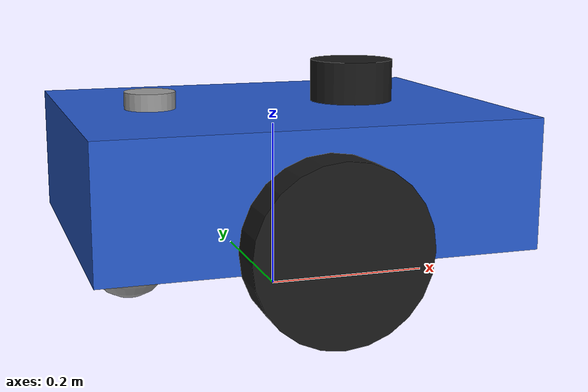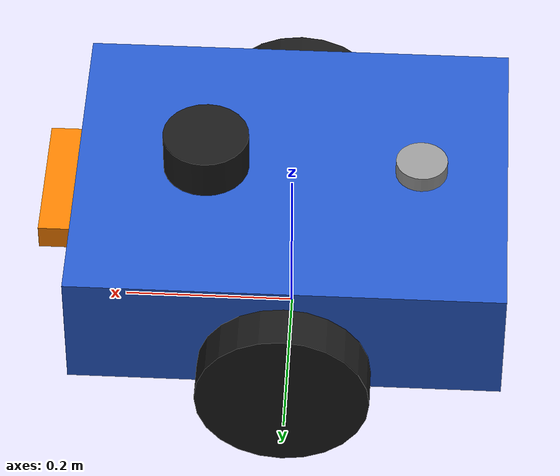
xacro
<?xml version="1.0"?>
<robot name="gps_bot" xmlns:xacro="http://www.ros.org/wiki/xacro">

  <xacro:include filename="inertial_macros.xacro"/>

  <!-- ================= Dimensions ================= -->
  <xacro:property name="PI"        value="3.14159265359"/>
  <xacro:property name="chassis_l" value="0.50"/>
  <xacro:property name="chassis_w" value="0.40"/>
  <xacro:property name="chassis_h" value="0.15"/>
  <xacro:property name="chassis_z" value="0.05"/>  <!-- chassis centre above wheel axle -->
  <xacro:property name="wheel_r"   value="0.10"/>
  <xacro:property name="wheel_w"   value="0.05"/>
  <xacro:property name="wheel_sep" value="0.45"/>
  <xacro:property name="caster_r"  value="0.05"/>
  <xacro:property name="caster_x"  value="0.18"/>

  <material name="blue">  <color rgba="0.15 0.35 0.80 1.0"/></material>
  <material name="black"> <color rgba="0.10 0.10 0.10 1.0"/></material>
  <material name="grey">  <color rgba="0.60 0.60 0.60 1.0"/></material>
  <material name="orange"><color rgba="1.00 0.50 0.00 1.0"/></material>

  <!-- ================= Base ================= -->
  <link name="base_footprint"/>

  <joint name="base_joint" type="fixed">
    <parent link="base_footprint"/>
    <child link="base_link"/>
    <origin xyz="0 0 ${wheel_r}" rpy="0 0 0"/>
  </joint>

  <link name="base_link">
    <visual>
      <origin xyz="0 0 ${chassis_z}" rpy="0 0 0"/>
      <geometry><box size="${chassis_l} ${chassis_w} ${chassis_h}"/></geometry>
      <material name="blue"/>
    </visual>
    <collision>
      <origin xyz="0 0 ${chassis_z}" rpy="0 0 0"/>
      <geometry><box size="${chassis_l} ${chassis_w} ${chassis_h}"/></geometry>
    </collision>
    <xacro:box_inertia m="8.0" x="${chassis_l}" y="${chassis_w}" z="${chassis_h}" xyz="0 0 ${chassis_z}"/>
  </link>
  <gazebo reference="base_link"><material>Gazebo/Blue</material></gazebo>

  <!-- ================= Wheels ================= -->
  <xacro:macro name="wheel" params="side y">
    <link name="${side}_wheel_link">
      <visual>
        <geometry><cylinder radius="${wheel_r}" length="${wheel_w}"/></geometry>
        <material name="black"/>
      </visual>
      <collision>
        <geometry><cylinder radius="${wheel_r}" length="${wheel_w}"/></geometry>
      </collision>
      <xacro:cylinder_inertia m="0.5" r="${wheel_r}" h="${wheel_w}"/>
    </link>
    <!-- rpy -pi/2 about X puts the wheel axis (link Z) along +Y of base_link for both wheels -->
    <joint name="${side}_wheel_joint" type="continuous">
      <parent link="base_link"/>
      <child link="${side}_wheel_link"/>
      <origin xyz="0 ${y} 0" rpy="${-PI/2} 0 0"/>
      <axis xyz="0 0 1"/>
    </joint>
    <gazebo reference="${side}_wheel_link">
      <mu1>1.0</mu1>
      <mu2>1.0</mu2>
      <material>Gazebo/Black</material>
    </gazebo>
  </xacro:macro>

  <xacro:wheel side="left"  y="${wheel_sep/2}"/>
  <xacro:wheel side="right" y="${-wheel_sep/2}"/>

  <!-- ================= Casters (frictionless) ================= -->
  <xacro:macro name="caster" params="name x">
    <link name="${name}_caster_link">
      <visual>
        <geometry><sphere radius="${caster_r}"/></geometry>
        <material name="grey"/>
      </visual>
      <collision>
        <geometry><sphere radius="${caster_r}"/></geometry>
      </collision>
      <xacro:sphere_inertia m="0.2" r="${caster_r}"/>
    </link>
    <joint name="${name}_caster_joint" type="fixed">
      <parent link="base_link"/>
      <child link="${name}_caster_link"/>
      <origin xyz="${x} 0 ${caster_r - wheel_r}" rpy="0 0 0"/>
    </joint>
    <gazebo reference="${name}_caster_link">
      <mu1>0.0</mu1>
      <mu2>0.0</mu2>
      <material>Gazebo/Grey</material>
    </gazebo>
  </xacro:macro>

  <xacro:caster name="front" x="${caster_x}"/>
  <xacro:caster name="rear"  x="${-caster_x}"/>

  <!-- ================= Gazebo control plugins ================= -->
  <gazebo>
    <plugin name="diff_drive" filename="libgazebo_ros_diff_drive.so">
      <ros>
        <remapping>odom:=wheel/odom</remapping>
      </ros>
      <update_rate>50</update_rate>
      <left_joint>left_wheel_joint</left_joint>
      <right_joint>right_wheel_joint</right_joint>
      <wheel_separation>${wheel_sep}</wheel_separation>
      <wheel_diameter>${2*wheel_r}</wheel_diameter>
      <max_wheel_torque>20</max_wheel_torque>
      <max_wheel_acceleration>10.0</max_wheel_acceleration>
      <odometry_source>0</odometry_source>   <!-- 0 = encoder, realistic drift -->
      <publish_odom>true</publish_odom>
      <publish_odom_tf>false</publish_odom_tf> <!-- odom->base_footprint comes from EKF -->
      <publish_wheel_tf>false</publish_wheel_tf>
      <odometry_frame>odom</odometry_frame>
      <robot_base_frame>base_footprint</robot_base_frame>
    </plugin>

    <plugin name="joint_states" filename="libgazebo_ros_joint_state_publisher.so">
      <update_rate>30</update_rate>
      <joint_name>left_wheel_joint</joint_name>
      <joint_name>right_wheel_joint</joint_name>
    </plugin>
  </gazebo>

  <xacro:include filename="sensors.xacro"/>
</robot>

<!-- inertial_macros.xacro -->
<robot xmlns:xacro="http://www.ros.org/wiki/xacro">
  <xacro:macro name="box_inertia" params="m x y z xyz:='0 0 0'">
    <inertial>
      <origin xyz="${xyz}" rpy="0 0 0"/>
      <mass value="${m}"/>
      <inertia ixx="${m*(y*y+z*z)/12}" ixy="0" ixz="0"
               iyy="${m*(x*x+z*z)/12}" iyz="0" izz="${m*(x*x+y*y)/12}"/>
    </inertial>
  </xacro:macro>

  <xacro:macro name="cylinder_inertia" params="m r h">
    <inertial>
      <mass value="${m}"/>
      <inertia ixx="${m*(3*r*r+h*h)/12}" ixy="0" ixz="0"
               iyy="${m*(3*r*r+h*h)/12}" iyz="0" izz="${m*r*r/2}"/>
    </inertial>
  </xacro:macro>

  <xacro:macro name="sphere_inertia" params="m r">
    <inertial>
      <mass value="${m}"/>
      <inertia ixx="${2*m*r*r/5}" ixy="0" ixz="0"
               iyy="${2*m*r*r/5}" iyz="0" izz="${2*m*r*r/5}"/>
    </inertial>
  </xacro:macro>
</robot>

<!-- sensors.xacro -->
<!-- Sensor links + Gazebo sensor plugins. Every plugin sets frame_name explicitly:
     Gazebo lumps fixed-joint links into base_link, so the default frame would be wrong. -->
<robot xmlns:xacro="http://www.ros.org/wiki/xacro">

  <!-- ================= 2D lidar ================= -->
  <link name="lidar_link">
    <visual>
      <geometry><cylinder radius="0.05" length="0.05"/></geometry>
      <material name="black"/>
    </visual>
    <collision>
      <geometry><cylinder radius="0.05" length="0.05"/></geometry>
    </collision>
    <xacro:cylinder_inertia m="0.1" r="0.05" h="0.05"/>
  </link>
  <joint name="lidar_joint" type="fixed">
    <parent link="base_link"/>
    <child link="lidar_link"/>
    <origin xyz="0.10 0 ${chassis_z + chassis_h/2 + 0.025}" rpy="0 0 0"/>
  </joint>

  <gazebo reference="lidar_link">
    <material>Gazebo/Black</material>
    <sensor name="lidar" type="ray">
      <always_on>true</always_on>
      <visualize>false</visualize>
      <update_rate>10</update_rate>
      <ray>
        <scan>
          <horizontal>
            <samples>360</samples>
            <resolution>1</resolution>
            <min_angle>-3.14159</min_angle>
            <max_angle>3.14159</max_angle>
          </horizontal>
        </scan>
        <range>
          <min>0.12</min>
          <max>12.0</max>
          <resolution>0.01</resolution>
        </range>
        <noise>
          <type>gaussian</type>
          <mean>0.0</mean>
          <stddev>0.01</stddev>
        </noise>
      </ray>
      <plugin name="lidar_plugin" filename="libgazebo_ros_ray_sensor.so">
        <ros><remapping>~/out:=scan</remapping></ros>
        <output_type>sensor_msgs/LaserScan</output_type>
        <frame_name>lidar_link</frame_name>
      </plugin>
    </sensor>
  </gazebo>

  <link name="camera_link">
    <visual>
      <geometry><box size="0.04 0.165 0.03"/></geometry>
      <material name="orange"/>
    </visual>
    <collision>
      <geometry><box size="0.04 0.165 0.03"/></geometry>
    </collision>
    <xacro:box_inertia m="0.1" x="0.04" y="0.165" z="0.03"/>
  </link>
  <joint name="camera_joint" type="fixed">
    <parent link="base_link"/>
    <child link="camera_link"/>
    <origin xyz="${chassis_l/2 + 0.02} 0 ${chassis_z + 0.03}" rpy="0 0 0"/>
  </joint>

  <!-- REP-103 optical frame: z forward, x right, y down -->
  <link name="camera_depth_optical_frame"/>
  <joint name="camera_optical_joint" type="fixed">
    <parent link="camera_link"/>
    <child link="camera_depth_optical_frame"/>
    <origin xyz="0 0 0" rpy="${-PI/2} 0 ${-PI/2}"/>
  </joint>

  <gazebo reference="camera_link">
    <material>Gazebo/Orange</material>
    <sensor name="astra_depth" type="depth">
      <always_on>true</always_on>
      <visualize>false</visualize>
      <update_rate>15</update_rate>
      <camera>
        <horizontal_fov>1.0472</horizontal_fov>
        <image>
          <width>320</width>
          <height>240</height>
          <format>R8G8B8</format>
        </image>
        <clip>
          <near>0.05</near>
          <far>10.0</far>
        </clip>
      </camera>
      <plugin name="astra_plugin" filename="libgazebo_ros_camera.so">
        <camera_name>camera</camera_name>
        <frame_name>camera_depth_optical_frame</frame_name>
        <hack_baseline>0.07</hack_baseline>
        <min_depth>0.6</min_depth>
        <max_depth>8.0</max_depth>
      </plugin>
    </sensor>
  </gazebo>

  <!-- ================= GPS ================= -->
  <link name="gps_link">
    <visual>
      <geometry><cylinder radius="0.03" length="0.02"/></geometry>
      <material name="grey"/>
    </visual>
    <xacro:cylinder_inertia m="0.05" r="0.03" h="0.02"/>
  </link>
  <joint name="gps_joint" type="fixed">
    <parent link="base_link"/>
    <child link="gps_link"/>
    <origin xyz="-0.15 0 ${chassis_z + chassis_h/2 + 0.01}" rpy="0 0 0"/>
  </joint>

  <gazebo reference="gps_link">
    <sensor name="gps" type="gps">
      <always_on>true</always_on>
      <update_rate>10</update_rate>
      <gps>
        <position_sensing>
          <horizontal>
            <noise type="gaussian"><mean>0.0</mean><stddev>0.05</stddev></noise>
          </horizontal>
          <vertical>
            <noise type="gaussian"><mean>0.0</mean><stddev>0.10</stddev></noise>
          </vertical>
        </position_sensing>
      </gps>
      <plugin name="gps_plugin" filename="libgazebo_ros_gps_sensor.so">
        <ros><remapping>~/out:=gps/fix</remapping></ros>
        <frame_name>gps_link</frame_name>
      </plugin>
    </sensor>
  </gazebo>

  <!-- ================= IMU ================= -->
  <link name="imu_link">
    <xacro:box_inertia m="0.02" x="0.02" y="0.02" z="0.01"/>
  </link>
  <joint name="imu_joint" type="fixed">
    <parent link="base_link"/>
    <child link="imu_link"/>
    <origin xyz="0 0 ${chassis_z}" rpy="0 0 0"/>
  </joint>

  <gazebo reference="imu_link">
    <sensor name="imu" type="imu">
      <always_on>true</always_on>
      <update_rate>50</update_rate>
      <imu>
        <angular_velocity>
          <x><noise type="gaussian"><mean>0.0</mean><stddev>2e-4</stddev></noise></x>
          <y><noise type="gaussian"><mean>0.0</mean><stddev>2e-4</stddev></noise></y>
          <z><noise type="gaussian"><mean>0.0</mean><stddev>2e-4</stddev></noise></z>
        </angular_velocity>
        <linear_acceleration>
          <x><noise type="gaussian"><mean>0.0</mean><stddev>1.7e-2</stddev></noise></x>
          <y><noise type="gaussian"><mean>0.0</mean><stddev>1.7e-2</stddev></noise></y>
          <z><noise type="gaussian"><mean>0.0</mean><stddev>1.7e-2</stddev></noise></z>
        </linear_acceleration>
      </imu>
      <plugin name="imu_plugin" filename="libgazebo_ros_imu_sensor.so">
        <ros><remapping>~/out:=imu/data</remapping></ros>
        <!-- absolute (ENU) yaw, required by navsat_transform -->
        <initial_orientation_as_reference>false</initial_orientation_as_reference>
        <frame_name>imu_link</frame_name>
      </plugin>
    </sensor>
  </gazebo>
</robot>
